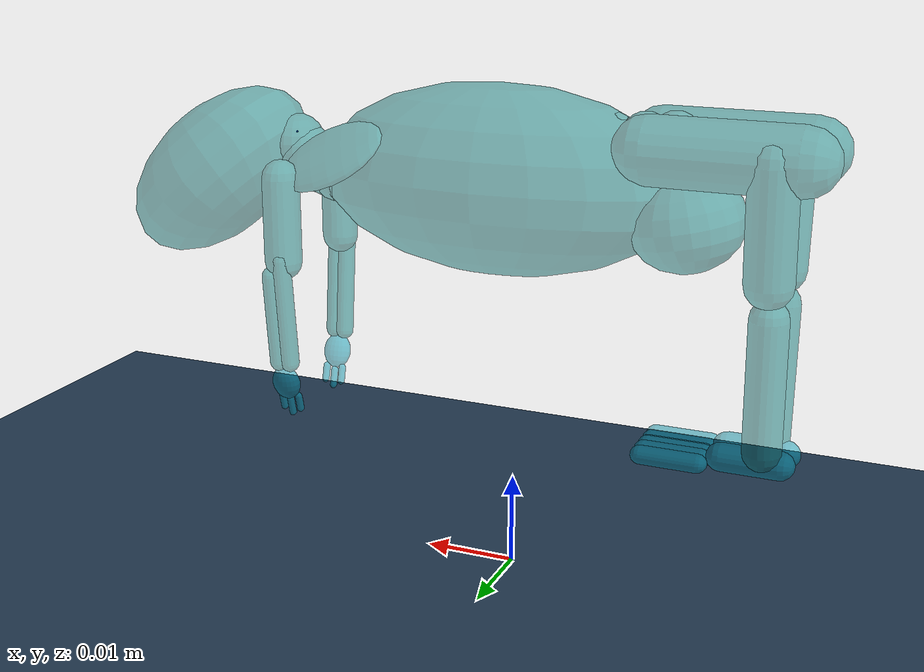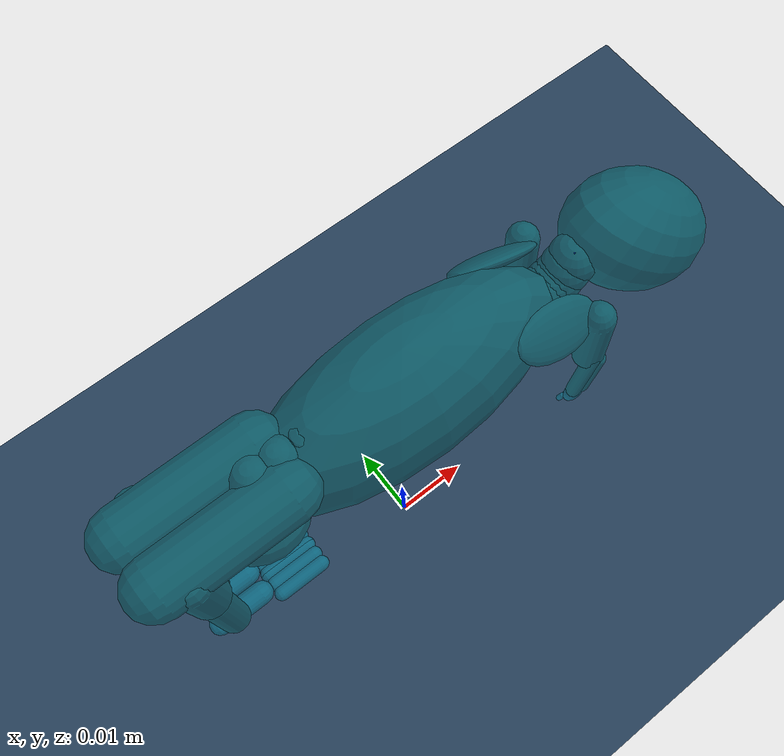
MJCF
<mujoco model="CyberMice">
    <compiler meshdir="meshes" balanceinertia="true" angle="radian" eulerseq="xyz" />

    <option timestep="0.002" />
    <size njmax="1000" nconmax="400" nkey="1" nuser_jnt="1" />
    <statistic extent="1" />

    <default class="main">
        <joint limited="true" stiffness=".0" armature="1e-05" damping="1e-05" />
        <site rgba="0 0 0.8 1" size="0.0001 0.0001 0.0001" />
        <tendon limited="false" width="0.0001" rgba="0.95 0.3 0.3 1" />
        <default class="forelimbs">
            <geom type="mesh" contype="3" conaffinity="2" friction="0.7" solref="0.015 1" solimp="0.95 0.99 0.003" material="bone" />
        </default>
        <default class="muscle">
            <general ctrllimited="true" ctrlrange="0 1" dyntype="muscle" gaintype="muscle" biastype="muscle" dynprm="0.01 0.04 0 0 0 0 0 0 0 0" gainprm="0.75 1.05 -1 200 0.5 1.6 1.5 1.3 1.2 0" biasprm="0.75 1.05 -1 200 0.5 1.6 1.5 1.3 1.2 0" />
        </default>
        <default class="motor">
            <general gainprm="5 0 0 0 0 0 0 0 0 0" />
        </default>
        <default class="sensor">
            <site group="4" />
        </default>

        <default class="Lumbar">
            <joint group="3" pos="0.003 0 -0.003" stiffness="0.1" armature="1e-05" damping="0.1"/>
            <general gainprm="0.15"/>
            <default class="Lumbar_x">
                <joint range="-0.25 0.25"/>
                <tendon range="-1 1"/>
            </default>
            <default class="Lumbar_y">
                <joint range="-0.25 0.25"/>
                <tendon range="-1 1"/>
            </default>
            <default class="Lumbar_z">
                <joint range="-0.25 0.25"/>
                <tendon range="-1 1"/>
                <general gainprm="0.4"/>
            </default>
        </default>

        <default class="Cervical">
            <joint group="3" pos="-0.02 0 -0.05" stiffness="0.1" armature="0.001" damping="0.1"/>
            <default class="Cervical_x">
                <joint range="-0.18 0.18"/>
                <tendon range="-1 1"/>
                <general gainprm="2.5"/>
            </default>
            <default class="Cervical_y">
                <joint range="-0.18 0.18"/>
                <tendon range="-1 1"/>
                <general gainprm="2.5"/>
            </default>
            <default class="Cervical_z">
                <joint range="-0.18 0.18"/>
                <tendon range="-1 1"/>
                <general gainprm="2.5"/>
            </default>
        </default>

        <default class="Caudal">
            <joint group="3" stiffness="1e-05" damping="0.002"/>
            <general gainprm="0.005"/>
            <default class="Caudal_z">
                <joint range="-0.08726646259971647 0.08726646259971647"/>
                <tendon range="-0.05 0.05"/>
            </default>
            <default class="Caudal_y">
                <joint range="-0.08726646259971647 0.08726646259971647"/>
                <tendon range="-0.2 0.2"/>
            </default>
            <default class="Caudal_x">
                <joint range="-0.08726646259971647 0.08726646259971647"/>
                <tendon range="-0.2 0.2"/>
            </default>
        </default>

        <default class="collision">
            <geom contype="1" conaffinity="1" condim="1" group="1"/>
            <default class="collision_primitive">
                <geom type="capsule" group="1" rgba="0 0.5 0.5 0.5" density="500.0"/>
                <default class="collision_primitive_paw">
                    <geom condim="3" priority="1" rgba="0 0.6 0.7 0.5" friction="1.5 0.005 0.0001"/>
                </default>
                <default class="nonself_collision_primitive">
                    <geom conaffinity="0" rgba="0 0.5 0.5 0.5"/>
                </default>
            </default>
        </default>

    </default>

    <asset>
        <texture name="skybox" type="skybox" builtin="gradient" rgb1="0.4 0.6 0.8" rgb2="0 0 0" mark="random" markrgb="1 1 1" width="800" height="800" />
        <texture name="plane" type="2d" builtin="checker" rgb1="0.2 0.3 0.4" rgb2="0.3 0.4 0.5" width="10" height="10" />
        <material name="plane" texture="plane" texrepeat="5 5" reflectance="0.2" />
        <texture name="grid" type="2d" builtin="checker" rgb1="0.1 0.2 0.3" rgb2="0.2 0.3 0.4" mark="edge" markrgb="0.2 0.3 0.4" width="300" height="300" />
        <material name="grid" texture="grid" texrepeat="1 1" texuniform="true" reflectance="0.2" />
    </asset>

    <worldbody>
        <geom name="floor" type="plane" conaffinity="1" size="100 100 .2" material="grid"/>
        <body name="CyberMice" pos="0 0 0.05">
            <camera name="side" mode="trackcom" pos="0.008 -0.256 0.180" xyaxes="1.000 0.007 -0.000 -0.003 0.486 0.874"/>
            <camera name="back" mode="trackcom" pos="-0.162 0.001 0.133" xyaxes="-0.003 -1.000 0.000 0.494 -0.002 0.869"/>

            <light name="top" mode="trackcom" exponent="10" cutoff="45" ambient="0 0 0" pos="0 0 5" directional="false" />

            <freejoint name="free"/>

            <geom name="Chest_collision" class="nonself_collision_primitive" type="ellipsoid" size="0.02 0.008 0.01" density="468.251260009" pos="0.002 0 -0.007" euler="0 0 0"/>

            <body name="C7" pos="0.01875 0 -0.008" gravcomp="0">
                <geom name="C7_collision" class="nonself_collision_primitive" type="sphere" pos="0.001 0 0" size="0.003" density="300.0"/>

                <joint name="T_C7_x" class="Cervical_x" pos="0 0 0" axis="1 0 0" range="-0.18 0.18"/>

                <body name="C6" pos="0.00075 0.00 0.0001" gravcomp="0">
                    <geom name="C6_collision" class="nonself_collision_primitive" type="sphere" pos="0.001 0 0" size="0.003" density="300.0"/>

                    <joint name="C7_C6_y" class="Cervical_y" pos="0 0 0" axis="0 1 0" range="-0.18 0.18"/>

                    <body name="C5" pos="0.001 0 0.0004" gravcomp="0">
                        <geom name="C5_collision" class="nonself_collision_primitive" type="sphere" pos="0.001 0 0" size="0.003" density="300.0"/>

                        <joint name="C6_C5_z" class="Cervical_z" pos="0 0 0" axis="-0.2588 0 0.9659" range="-0.18 0.18"/>

                        <body name="C4" pos="0.001 0 0.0003" gravcomp="0">
                            <geom name="C4_collision" class="nonself_collision_primitive" type="sphere" pos="0.001 0 0" size="0.003" density="300.0"/>

                            <joint name="C5_C4_x" class="Cervical_x" pos="0 0 0" axis="0.9659 0 0.2588" range="-0.18 0.18"/>

                            <body name="C3" pos="0.001 0 0.0005" euler="0 0 0" gravcomp="0">
                                <geom name="C3_collision" class="nonself_collision_primitive" type="sphere" pos="0.001 0 0" size="0.003" density="300.0"/>

                                <joint name="C4_C3_y" class="Cervical_y" pos="0 0 0" axis="0 1 0" range="-0.18 0.18"/>

                                <body name="C2" pos="0.001 0 0.001" gravcomp="0">
                                    <geom name="C2_collision" class="nonself_collision_primitive" type="sphere" pos="0.001 0 0" size="0.003" density="300.0"/>

                                    <joint name="C3_C2_z" class="Cervical_z" pos="0 0 0" axis="-0.4226 0 0.9063" range="-0.18 0.18"/>

                                    <body name="C1" pos="0.001 0 0.001" gravcomp="0">
                                        <geom name="C1_collision" class="nonself_collision_primitive" type="sphere" pos="0.001 0 0" size="0.003" density="300.0"/>

                                        <joint name="C2_C1_x" class="Cervical_x" pos="0 0 0" axis="0.9063 0 0.4226" range="-0.18 0.18"/>

                                        <body name="Head" pos="0.001 0 0.001" gravcomp="0">
                                            <geom name="Head_collision" class="collision_primitive" type="ellipsoid" size="0.0125 0.0075 0.007" density="703.10773841" pos="0.01 0 -0.005" euler="0 0.7 0"/>

                                            <camera name="egocentric" fovy="80.0" pos="0.033 0.000 0.052" xyaxes="0.105 -0.995 -0.000 0.595 0.063 0.801"/>

                                            <site name="Head"/>

                                            <joint name="C1_head_y" class="Cervical_y" pos="0 0 0" axis="0 1 0" range="-0.18 0.18"/>
                                            <joint name="C1_head_z" class="Cervical_z" pos="0 0 0" axis="-0.4226 0 0.9063" range="-0.18 0.18"/>

                                        </body>
                                    </body>
                                </body>
                            </body>
                        </body>
                    </body>
                </body>
            </body>

            <body name="RScapula" pos="0.0135 0.0 -0.009" euler="0 0.0 0" gravcomp="0">
                <geom name="RScapula_collision" class="nonself_collision_primitive" type="ellipsoid" size="0.001 0.0035 0.0065" density="513.564646393" pos="0.005 -0.0055 0.004" euler="0 2 0.9" group="1"/>

                <joint name="RScapula_r1" pos="0.005 0 0" axis="1 0 0" range="-0.08726646259971647 0.08726646259971647" group="0" />
                <joint name="RScapula_r2" pos="0.005 0 0" axis="0 1 0" range="-0.08726646259971647 0.08726646259971647" group="0" />
                <joint name="RScapula_r3" pos="0.005 -0.006 0.0055" axis="1 -0.1 -0.5" range="-0.08726646259971647 0.08726646259971647" group="0" />
                <joint name="RScapula_r4" pos="0.005 -0.006 0.0055" axis="0 -1 1" range="-0.08726646259971647 0.08726646259971647" group="0" />

                <body name="RHumerus" pos="0.01 -0.006 0.0015" euler="0 0 0" gravcomp="0">
                    <joint name="RShoulder_flexion" pos="0 0 0" axis="0 -1 0" range="-1.2217304763960306 1.2217304763960306" group="0" />
                    <joint name="RShoulder_adduction" pos="0 0 0" axis="1 0 0" range="-1.0471975511965976 0.7853981633974483" group="0" />
                    <joint name="RShoulder_rotation" pos="0 0 0" axis="0 0 1" range="-0.17453292519943295 1.5707963267948966" group="0" />
                    <geom name="RHumerus_collision" class="collision_primitive" size="0.002 0.0045" pos="0.0005 -0.0005 -0.0045" euler="0 0 0"/>

                    <body name="RUlna" pos="0.001 -0.001 -0.01" euler="0 0 0" gravcomp="0">
                        <joint name="RElbow_flexion" pos="0 0 0" axis="0 -1 0" range="0.0 2.5" group="0" />
                        <geom name="RUlna_collision" class="collision_primitive" size="0.001 0.006" pos="-0.0008 0 -0.0045" euler="0.1 0 0"/>

                        <body name="RRadius" pos="0 0 -0.0075" gravcomp="0">
                            <geom name="RRadius_collision" class="collision_primitive" size="0.001 0.005" pos="0.0005 0 0.002" euler="0.1 0 0"/>

                            <body name="RCarpi" pos="0 0 -0.0035" gravcomp="0">
                                <joint name="RWrist_adduction" pos="0 0 0" axis="0 -1 0" range="-0.7853981633974483 0.7853981633974483" group="0" />
                                <joint name="RWrist_flexion" pos="0 0 0" axis="1 0 0" range="-1.5707963267948966 1.5707963267948966" group="0" />
                                <geom name="RHand_collision" class="collision_primitive_paw" type="ellipsoid" size="0.0016 0.001 0.002" density="2531.78122831" pos="0 0.001 -0.002" euler="0.25 0 0.1"/>
                                <geom name="RFinger_0_collision" class="collision_primitive_paw" size="0.0004 0.0008" pos="0.001 0.002 -0.0045" euler="0.25 0 0.1"/>
                                <geom name="RFinger_1_collision" class="collision_primitive_paw" size="0.0004 0.0009" pos="0 0.002 -0.005" euler="0.25 0 0.1"/>
                                <geom name="RFinger_2_collision" class="collision_primitive_paw" size="0.0004 0.0008" pos="-0.001 0.002 -0.0045" euler="0.25 0 0.1"/>

                            </body>
                        </body>
                    </body>
                </body>
            </body>

            <body name="LScapula" pos="0.0135 0.0 -0.009" gravcomp="0">
                <geom name="LScapula_collision" class="nonself_collision_primitive" type="ellipsoid" size="0.001 0.0035 0.0065" density="513.564646393" pos="0.005 0.0055 0.004" euler="0 2 -0.9" group="1"/>

                <joint name="LScapula_r1" pos="0.005 0 0" axis="-1 0 0" range="-0.08726646259971647 0.08726646259971647" group="1" />
                <joint name="LScapula_r2" pos="0.005 0 0" axis="0 1 0" range="-0.08726646259971647 0.08726646259971647" group="1" />
                <joint name="LScapula_r3" pos="0.005 0.006 0.0055" axis="-1 -0.1 0.5" range="-0.08726646259971647 0.08726646259971647" group="1" />
                <joint name="LScapula_r4" pos="0.005 0.006 0.0055" axis="0 -1 -1" range="-0.08726646259971647 0.08726646259971647" group="1" />

                <body name="LHumerus" pos="0.01 0.006 0.0015" euler="0 0 0" gravcomp="0">
                    <joint name="LShoulder_flexion" pos="0 0 0" axis="0 -1 0" range="-1.2217304763960306 1.2217304763960306" group="1" />
                    <joint name="LShoulder_adduction" pos="0 0 0" axis="-1 0 0" range="-1.0471975511965976 0.7853981633974483" group="1" />
                    <joint name="LShoulder_rotation" pos="0 0 0" axis="0 0 -1" range="-0.17453292519943295 1.5707963267948966" group="1" />
                    <geom name="LHumerus_collision" class="collision_primitive" size="0.002 0.0045" pos="0.0005 0.0005 -0.0045" euler="0 0 0"/>

                    <body name="LUlna" pos="0.001 0.001 -0.01" euler="0 0 0" gravcomp="0">
                        <joint name="LElbow_flexion" pos="0 0 0" axis="0 -1 0" range="0.0 2.5" group="1" />
                        <geom name="LUlna_collision" class="collision_primitive" size="0.001 0.006" pos="-0.0008 0 -0.0045" euler="-0.1 0 0"/>

                        <body name="LRadius" pos="0 0 -0.0075" gravcomp="0">
                            <geom name="LRadius_collision" class="collision_primitive" size="0.001 0.005" pos="0.0005 0 0.002" euler="-0.1 0 0"/>

                            <body name="LCarpi" pos="0 0 -0.0035" gravcomp="0">
                                <joint name="LWrist_adduction" pos="0 0 0" axis="0 -1 0" range="-0.7853981633974483 0.7853981633974483" group="1" />
                                <joint name="LWrist_flexion" pos="0 0 0" axis="-1 0 0" range="-1.5707963267948966 1.5707963267948966" group="1" />
                                <geom name="LHand_collision" class="collision_primitive_paw" type="ellipsoid" size="0.0016 0.001 0.002" density="2531.78122831" pos="0 -0.001 -0.002" euler="-0.25 0 0.1"/>
                                <geom name="LFinger_0_collision" class="collision_primitive_paw" size="0.0004 0.0008" pos="0.001 -0.002 -0.0045" euler="-0.25 0 0.1"/>
                                <geom name="LFinger_1_collision" class="collision_primitive_paw" size="0.0004 0.0009" pos="0 -0.002 -0.005" euler="-0.25 0 0.1"/>
                                <geom name="LFinger_2_collision" class="collision_primitive_paw" size="0.0004 0.0008" pos="-0.001 -0.002 -0.0045" euler="-0.25 0 0.1"/>
                            </body>
                        </body>
                    </body>
                </body>
            </body>

            <body name="L1" pos="0.0 0.00 0.00" gravcomp="0">
                <geom name="L1_collision" class="nonself_collision_primitive" type="sphere" size="0.0025" pos="-0.002 0 0"/>

                <joint name="T_L1_x" class="Lumbar_x" pos="0 0 0.001" axis="0.9848 0 0.1736" range="-0.25 0.25"/>

                <body name="L2" pos="-0.004 0 -0.00015" gravcomp="0">
                    <geom name="L2_collision" class="nonself_collision_primitive" type="sphere" size="0.0025" pos="-0.001 0 -0.00075"/>

                    <joint name="L1_L2_y" class="Lumbar_y" pos="0 0 0" axis="0 1 0" range="-0.25 0.25"/>

                    <body name="L3" pos="-0.00225 0 -0.00075" euler="0 0 0" gravcomp="0">
                        <geom name="L3_collision" class="nonself_collision_primitive" type="sphere" size="0.0025" pos="-0.001 0 -0.0005"/>

                        <joint name="L2_L3_z" class="Lumbar_z" pos="0 0 0" axis="-0.1736 0 0.9848" range="-0.25 0.25"/>

                        <body name="L4" pos="-0.00275 0 -0.0006" euler="0 0 0" gravcomp="0">
                            <geom name="L4_collision" class="nonself_collision_primitive" type="sphere" size="0.0025" pos="-0.001 0 -0.00025"/>

                            <joint name="L3_L4_x" class="Lumbar_x" pos="0 0 0" axis="1 0 0" range="-0.25 0.25"/>

                            <body name="L5" pos="-0.0035 0 -0.000" gravcomp="0">
                                <geom name="L5_collision" class="nonself_collision_primitive" type="sphere" size="0.0025" pos="-0.001 0 0"/>

                                <joint name="L4_L5_y" class="Lumbar_y" pos="0 0 0" axis="0 1 0" range="-0.25 0.25"/>

                                <body name="L6" pos="-0.003 0 -0.000" gravcomp="0">
                                    <geom name="L6_collision" class="nonself_collision_primitive" type="sphere" size="0.0025" pos="-0.001 0 0.00025"/>

                                    <joint name="L5_L6_z" class="Lumbar_z" pos="0 0 0" axis="0 0 1" range="-0.25 0.25"/>

                                    <body name="Pelvis" pos="0.0025 0.00 -0.00175" euler="0 0 0" gravcomp="0">
                                        <geom name="RPelvis_collision" class="nonself_collision_primitive" size="0.0035 0.0075 0" density="1548.57736929" pos="-0.009 -0.003 0.001" euler="0 1.57 0"/>
                                        <geom name="LPelvis_collision" class="nonself_collision_primitive" size="0.0035 0.0075 0" density="1548.57736929" pos="-0.009 0.003 0.001" euler="0 1.57 0"/>
                                        <geom name="collision_pelvis_gut" class="nonself_collision_primitive" type="ellipsoid" size="0.006 0.006 0.005" density="1548.57736929" pos="-0.005 0 -0.0065" euler="0 0.2 0"/>

                                        <joint name="L6_S1_x" class="Lumbar_x" pos="-0.005 0 0.002" axis="1 0 0" range="-0.25 0.25"/>
                                        <joint name="L6_S1_y" class="Lumbar_y" pos="-0.005 0 0.002" axis="0 1 0" range="-0.25 0.25"/>
                                        <joint name="L6_S1_z" class="Lumbar_z" pos="-0.005 0 0.002" axis="0 0 1" range="-0.25 0.25"/>

                                        <body name="RFemur" pos="-0.013 -0.0028 0.002" gravcomp="0">
                                            <joint name="RHip_rotation" pos="0 0 0" axis="0 0 1" range="-0.5 0.5" group="3" />
                                            <joint name="RHip_flexion" pos="0 0 0" axis="0 -1 0" range="-1.5707963267948966 1.5707963267948966" group="3" />
                                            <joint name="RHip_adduction" pos="0 0 0" axis="1 0 0" range="-1.0471975511965976 0.5235987755982988" group="3" />

                                            <geom name="RFemur_collision" class="collision_primitive" size="0.0025 0.006" density="1561.75550556" pos="-0.001 -0.001 -0.007" euler="0.1 0 0"/>

                                            <body name="R_Leg" pos="-0.001 0 -0.0135" gravcomp="0">
                                                <joint name="RKnee_flexion" pos="0 0 0" axis="0 1 0" range="0.0 2.5" group="3" />
                                                <geom name="R_leg_collision" class="collision_primitive" size="0.002 0.007" density="1302.86687267" pos="-0.0002 0.0002 -0.01" euler="0.05 0 0"/>

                                                <body name="RPedal" pos="-0.001 0.00125 -0.0184" gravcomp="0">
                                                    <joint name="RAnkle_flexion" pos="0 0 0" axis="0 -1 0" range="-1.0471975511965976 1.0471975511965976" group="3" />
                                                    <joint name="RAnkle_rotation" pos="0 0 0" axis="1 0 0" range="-0.3490658503988659 0.3490658503988659" group="3" />

                                                    <geom name="RFoot_collision" class="collision_primitive_paw" size="0.0015 0.003" density="2041.15978228" pos="0.002 0 0" euler="0 1.57 0"/>
                                                    <geom name="RToe_0_collision" class="collision_primitive_paw" size="0.001 0.003" density="2041.15978228" pos="0.01 0.0015 -0.0005" euler="0 1.57 0"/>
                                                    <geom name="RToe_1_collision" class="collision_primitive_paw" size="0.001 0.003" density="2041.15978228" pos="0.01 0 -0.0005" euler="0 1.57 0"/>
                                                    <geom name="RToe_2_collision" class="collision_primitive_paw" size="0.001 0.003" density="2041.15978228" pos="0.01 -0.0015 -0.0005" euler="0 1.57 0"/>
                                                </body>
                                            </body>
                                        </body>

                                        <body name="LFemur" pos="-0.013 0.0028 0.002" gravcomp="0">
                                            <joint name="LHip_rotation" pos="0 0 0" axis="0 0 -1" range="-0.5 0.5" group="4" />
                                            <joint name="LHip_flexion" pos="0 0 0" axis="0 -1 0" range="-1.5707963267948966 1.5707963267948966" group="4" />
                                            <joint name="LHip_adduction" pos="0 0 0" axis="-1 0 0" range="-1.0471975511965976 0.5235987755982988" group="4" />

                                            <geom name="LFemur_collision" class="collision_primitive" size="0.0025 0.006" density="1561.75550556" pos="-0.001 0.001 -0.007" euler="-0.1 0 0"/>

                                            <body name="LLeg" pos="-0.001 0 -0.0135" gravcomp="0">
                                                <joint name="LKnee_flexion" pos="0 0 0" axis="0 1 0" range="0.0 2.5" group="4" />
                                                <geom name="L_leg_collision" class="collision_primitive" size="0.002 0.007" density="1302.86687267" pos="-0.0002 -0.0002 -0.01" euler="-0.05 0 0"/>

                                                <body name="LPedal" pos="-0.001 -0.00125 -0.0184" gravcomp="0">
                                                    <joint name="LAnkle_flexion" pos="0 0 0" axis="0 -1 0" range="-1.0471975511965976 1.0471975511965976" group="4" />
                                                    <joint name="LAnkle_rotation" pos="0 0 0" axis="-1 0 0" range="-0.3490658503988659 0.3490658503988659" group="4" />

                                                    <geom name="LFoot_collision" class="collision_primitive_paw" size="0.0015 0.003" density="2041.15978228" pos="0.002 0 0" euler="0 1.57 0"/>
                                                    <geom name="LToe_0_collision" class="collision_primitive_paw" size="0.001 0.003" density="2041.15978228" pos="0.01 -0.0015 -0.0005" euler="0 1.57 0"/>
                                                    <geom name="LToe_1_collision" class="collision_primitive_paw" size="0.001 0.003" density="2041.15978228" pos="0.01 0 -0.0005" euler="0 1.57 0"/>
                                                    <geom name="LToe_2_collision" class="collision_primitive_paw" size="0.001 0.003" density="2041.15978228" pos="0.01 0.0015 -0.0005" euler="0 1.57 0"/>

                                                </body>
                                            </body>
                                        </body>

                                    </body>
                                </body>
                            </body>
                        </body>
                    </body>
                </body>
            </body>

        </body>
    </worldbody>

    <tendon>
        <fixed name="Cervical_x" class="Cervical_x">
            <joint joint="T_C7_x" coef="0.334"/>
            <joint joint="C5_C4_x" coef="0.333"/>
            <joint joint="C2_C1_x" coef="0.333"/>
        </fixed>

        <fixed name="Cervical_y" class="Cervical_y">
            <joint joint="C7_C6_y" coef="0.334"/>
            <joint joint="C4_C3_y" coef="0.333"/>
            <joint joint="C1_head_y" coef="0.333"/>
        </fixed>

        <fixed name="Cervical_z" class="Cervical_z">
            <joint joint="C6_C5_z" coef="0.334"/>
            <joint joint="C3_C2_z" coef="0.333"/>
            <joint joint="C1_head_z" coef="0.333"/>
        </fixed>

        <fixed name="Lumbar_x" class="Lumbar_x">
            <joint joint="T_L1_x" coef="0.334"/>
            <joint joint="L3_L4_x" coef="0.332"/>
            <joint joint="L6_S1_x" coef="0.334"/>
        </fixed>

        <fixed name="Lumbar_y" class="Lumbar_y">
            <joint joint="L1_L2_y" coef="0.334"/>
            <joint joint="L4_L5_y" coef="0.332"/>
            <joint joint="L6_S1_y" coef="0.334"/>
        </fixed>

        <fixed name="Lumbar_z" class="Lumbar_z">
            <joint joint="L2_L3_z" coef="0.334"/>
            <joint joint="L5_L6_z" coef="0.332"/>
            <joint joint="L6_S1_z" coef="0.334"/>
        </fixed>

    </tendon>

    <actuator>

        <general name = "Cervical_x" forcerange="-20 20" tendon="Cervical_x" dyntype="filter" biastype="affine"/>
        <general name = "Cervical_y" forcerange="-20 20" tendon="Cervical_y" dyntype="filter" biastype="affine"/>
        <general name = "Cervical_z" forcerange="-20 20" tendon="Cervical_z" dyntype="filter" biastype="affine"/>

        <general name = "Lumbar_x" forcerange="-20 20" tendon="Lumbar_x" dyntype="filter" biastype="affine"/>
        <general name = "Lumbar_y" forcerange="-20 20" tendon="Lumbar_y" dyntype="filter" biastype="affine"/>
        <general name = "Lumbar_z" forcerange="-20 20" tendon="Lumbar_z" dyntype="filter" biastype="affine"/>

    </actuator>

    <contact>
        <exclude body1="CyberMice" body2="RHumerus" />
        <exclude body1="RHumerus" body2="RRadius" />
        <exclude body1="RUlna" body2="RCarpi" />
        <exclude body1="CyberMice" body2="LHumerus" />
        <exclude body1="LHumerus" body2="LRadius" />
        <exclude body1="LUlna" body2="LCarpi" />

        <exclude body1="CyberMice" body2="C1" />
        <exclude body1="CyberMice" body2="C2" />
        <exclude body1="CyberMice" body2="C3" />
        <exclude body1="CyberMice" body2="C4" />
        <exclude body1="CyberMice" body2="C5" />
        <exclude body1="CyberMice" body2="C6" />
        <exclude body1="CyberMice" body2="Head" />
        <exclude body1="Head" body2="C2" />
        <exclude body1="Head" body2="C3" />
        <exclude body1="Head" body2="C4" />
        <exclude body1="Head" body2="C5" />
        <exclude body1="Head" body2="C6" />
        <exclude body1="C1" body2="C3" />
        <exclude body1="C1" body2="C4" />
        <exclude body1="C1" body2="C5" />
        <exclude body1="C1" body2="C6" />
        <exclude body1="C1" body2="C7" />
        <exclude body1="C2" body2="C4" />
        <exclude body1="C2" body2="C5" />
        <exclude body1="C2" body2="C6" />
        <exclude body1="C2" body2="C7" />
        <exclude body1="C3" body2="C5" />
        <exclude body1="C3" body2="C6" />
        <exclude body1="C3" body2="C7" />
        <exclude body1="C4" body2="C6" />
        <exclude body1="C4" body2="C7" />
        <exclude body1="C5" body2="C7" />

        <exclude body1="CyberMice" body2="L2" />
        <exclude body1="CyberMice" body2="L3" />
        <exclude body1="CyberMice" body2="L4" />
        <exclude body1="CyberMice" body2="L5" />
        <exclude body1="CyberMice" body2="L6" />
        <exclude body1="CyberMice" body2="Pelvis" />
        <exclude body1="L5" body2="Pelvis" />
        <exclude body1="L4" body2="Pelvis" />
    </contact>

    <sensor>
        <gyro name="gyro" site="Head" />
        <accelerometer name="accelerometer" site="Head"/>
        <velocimeter name="velocimeter" site="Head"/>
        <subtreelinvel name="torso_subtreelinvel" body="CyberMice" />
        <subtreecom name="body_com" body="CyberMice" />
    </sensor>
</mujoco>
